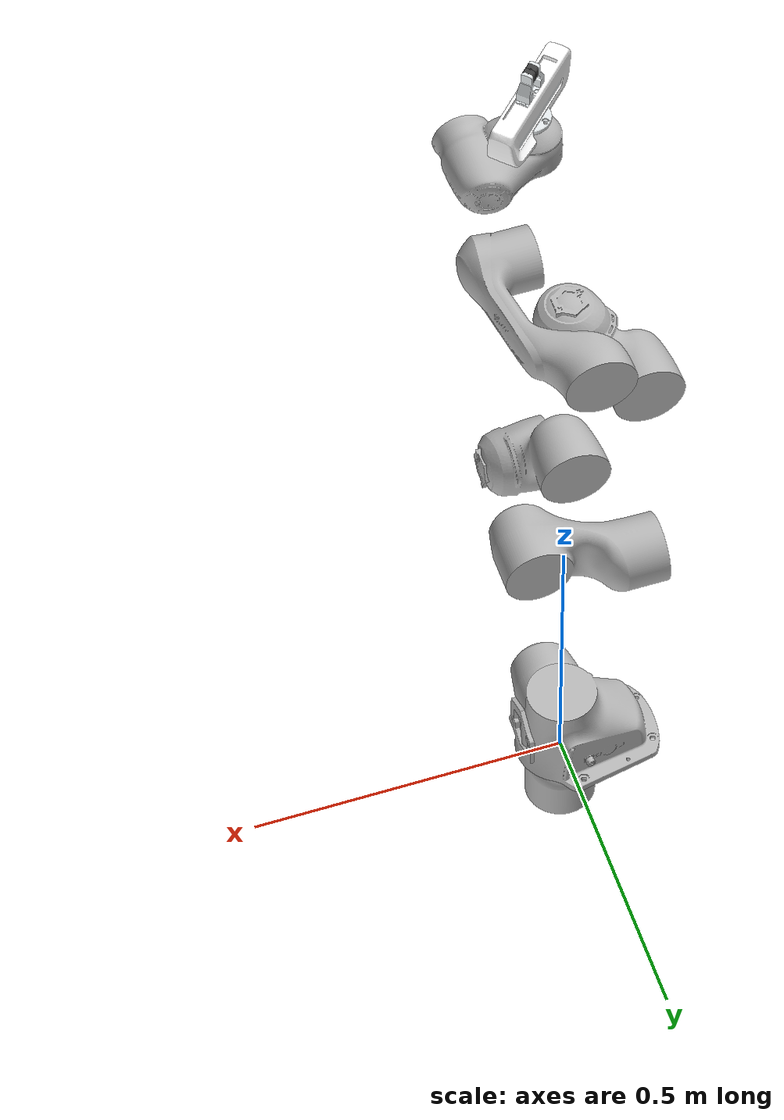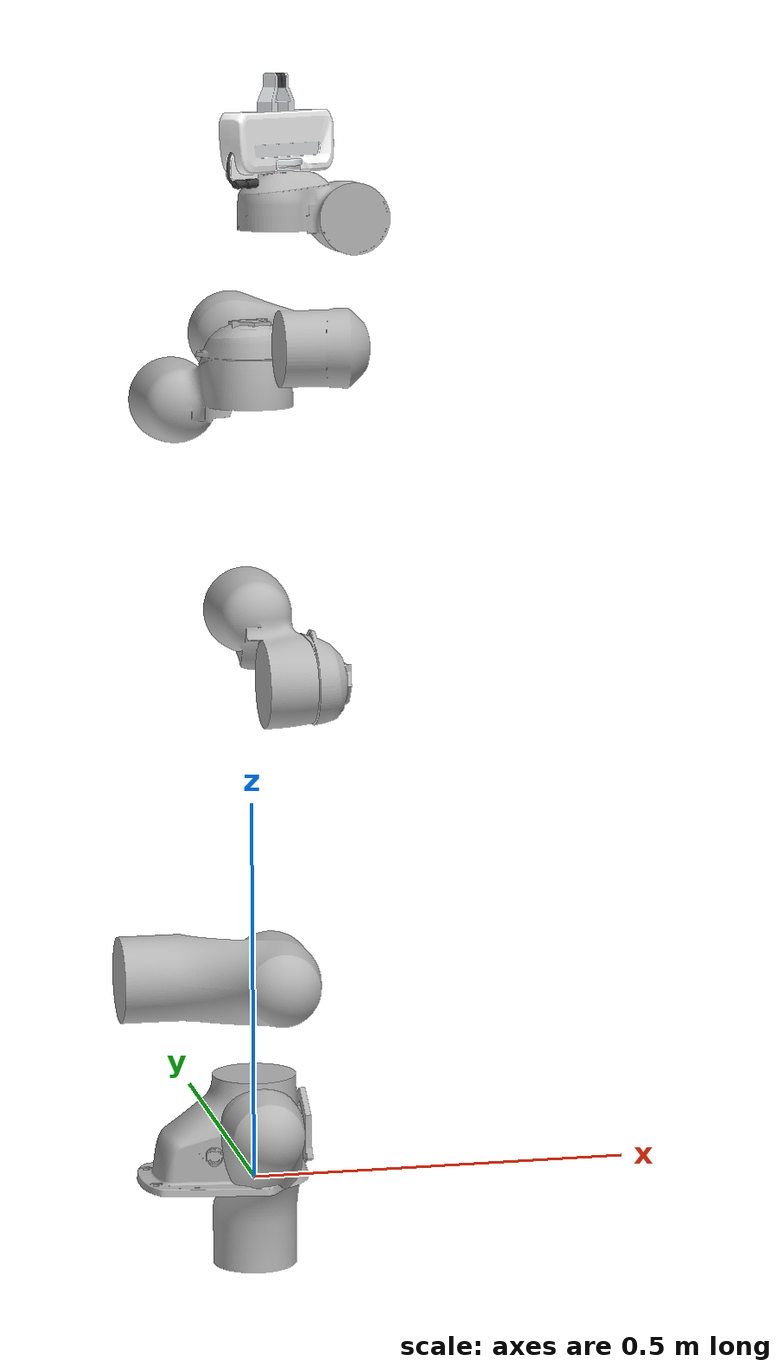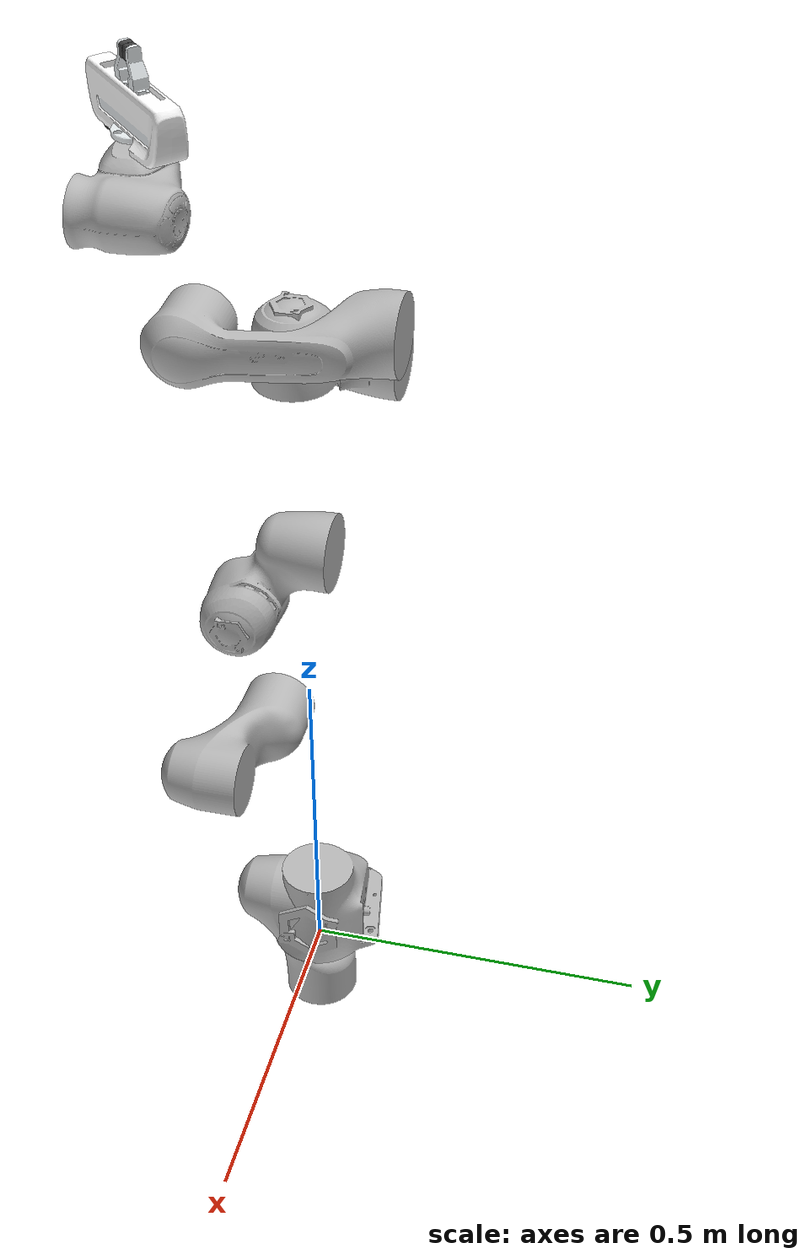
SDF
<?xml version="1.0" ?>
<sdf version="1.7">
    <model name="indy7whand">
        <!-- Fix To World -->
        <joint name="indy7_joint_world" type="fixed">
            <parent>world</parent>
            <child>indy7_link0</child>
        </joint>
        <!-- Arm Links -->
        <link name="indy7_link0">
            <visual name="indy7_link0_visual">
                <geometry>
                    <mesh>
                        <uri>https://fuel.ignitionrobotics.org/1.0/pmh5050/models/indy7/2/files/meshes/visual/link0.stl</uri>
                    </mesh>
                </geometry>
            </visual>
            <collision name="indy7_link0_collision">
                <geometry>
                    <mesh>
                        <uri>https://fuel.ignitionrobotics.org/1.0/pmh5050/models/indy7/2/files/meshes/visual/link0.stl</uri>
                    </mesh>
                </geometry>
                <surface>
                    <friction>
                        <ode>
                            <mu>1.05</mu>
                            <mu2>1.05</mu2>
                        </ode>
                    </friction>
                </surface>
            </collision>
            <inertial>
                <inertia>
                    <ixx>0.005539632623033441</ixx>
                    <iyy>0.005801945157215893</iyy>
                    <izz>0.010586386650296754</izz>
                    <ixy>-1.2227647336197177e-06</ixy>
                    <ixz>5.273278732323956e-05</ixz>
                    <iyz>2.0169648647550674e-07</iyz>
                </inertia>
                <pose>-0.00058911 1.65353e-06 0.0369576 0 0 0</pose>
                <mass>2.1311894186529186</mass>
            </inertial>
        </link>
        <link name="indy7_link1">
            <pose relative_to="indy7_joint1">0 0 0 0 0 0</pose>
            <visual name="indy7_link1_visual">
                <geometry>
                    <mesh>
                        <uri>https://fuel.ignitionrobotics.org/1.0/pmh5050/models/indy7/2/files/meshes/visual/link1.stl</uri>
                    </mesh>
                </geometry>
            </visual>
            <collision name="indy7_link1_collision">
                <geometry>
                    <mesh>
                        <uri>https://fuel.ignitionrobotics.org/1.0/pmh5050/models/indy7/2/files/meshes/visual/link1.stl</uri>
                    </mesh>
                </geometry>
                <surface>
                    <friction>
                        <ode>
                            <mu>1.05</mu>
                            <mu2>1.05</mu2>
                        </ode>
                    </friction>
                </surface>
            </collision>
            <inertial>
                <inertia>
                    <ixx>0.0148524244273536</ixx>
                    <iyy>0.014106931226049557</iyy>
                    <izz>0.008162736605552327</izz>
                    <ixy>1.0100553890581127e-06</ixy>
                    <ixz>2.7561848751209972e-06</ixz>
                    <iyz>0.0033340092775459226</iyz>
                </inertia>
                <pose>8.14364e-06 -0.0342345 0.160472 0 0 0</pose>
                <mass>1.551931236405957</mass>
            </inertial>
        </link>
        <link name="indy7_link2">
            <pose relative_to="indy7_joint2">0 0 0 0 0 0</pose>
            <visual name="indy7_link2_visual">
                <geometry>
                    <mesh>
                        <uri>https://fuel.ignitionrobotics.org/1.0/pmh5050/models/indy7/2/files/meshes/visual/link2.stl</uri>
                    </mesh>
                </geometry>
            </visual>
            <collision name="indy7_link2_collision">
                <geometry>
                    <mesh>
                        <uri>https://fuel.ignitionrobotics.org/1.0/pmh5050/models/indy7/2/files/meshes/visual/link2.stl</uri>
                    </mesh>
                </geometry>
                <surface>
                    <friction>
                        <ode>
                            <mu>1.05</mu>
                            <mu2>1.05</mu2>
                        </ode>
                    </friction>
                </surface>
            </collision>
            <inertial>
                <inertia>
                    <ixx>0.031940497190853935</ixx>
                    <iyy>0.25763478226066805</iyy>
                    <izz>0.23709709816883917</izz>
                    <ixy>4.045423338707414e-06</ixy>
                    <ixz>-0.010682473828245958</ixz>
                    <iyz>2.8674601059559716e-06</iyz>
                </inertia>
                <pose>-0.20838 -6.40588e-06 0.0466178 0 0 0</pose>
                <mass>11.728264581913129</mass>
            </inertial>
        </link>
        <link name="indy7_link3">
            <pose relative_to="indy7_joint3">0 0 0 0 0 0</pose>
            <visual name="indy7_link3_visual">
                <geometry>
                    <mesh>
                        <uri>https://fuel.ignitionrobotics.org/1.0/pmh5050/models/indy7/2/files/meshes/visual/link3.stl</uri>
                    </mesh>
                </geometry>
            </visual>
            <collision name="indy7_link3_collision">
                <geometry>
                    <mesh>
                        <uri>https://fuel.ignitionrobotics.org/1.0/pmh5050/models/indy7/2/files/meshes/visual/link3.stl</uri>
                    </mesh>
                </geometry>
                <surface>
                    <friction>
                        <ode>
                            <mu>1.05</mu>
                            <mu2>1.05</mu2>
                        </ode>
                    </friction>
                </surface>
            </collision>
            <inertial>
                <inertia>
                    <ixx>0.0035236079378671153</ixx>
                    <iyy>0.012367043193457132</iyy>
                    <izz>0.01087480800833959</izz>
                    <ixy>1.0176445869907627e-07</ixy>
                    <ixz>-0.001423302013928762</ixz>
                    <iyz>-1.6188026601592563e-07</iyz>
                </inertia>
                <pose>-0.0966333 -3.62965e-07 -0.0496837 0 0 0</pose>
                <mass>1.1987293471615488</mass>
            </inertial>
        </link>
        <link name="indy7_link4">
            <pose relative_to="indy7_joint4">0 0 0 0 0 0</pose>
            <visual name="indy7_link4_visual">
                <geometry>
                    <mesh>
                        <uri>https://fuel.ignitionrobotics.org/1.0/pmh5050/models/indy7/2/files/meshes/visual/link4.stl</uri>
                    </mesh>
                </geometry>
            </visual>
            <collision name="indy7_link4_collision">
                <geometry>
                    <mesh>
                        <uri>https://fuel.ignitionrobotics.org/1.0/pmh5050/models/indy7/2/files/meshes/visual/link4.stl</uri>
                    </mesh>
                </geometry>
                <surface>
                    <friction>
                        <ode>
                            <mu>1.05</mu>
                            <mu2>1.05</mu2>
                        </ode>
                    </friction>
                </surface>
            </collision>
            <inertial>
                <inertia>
                    <ixx>0.0017769209306738372</ixx>
                    <iyy>0.0037098366268569676</iyy>
                    <izz>0.0030422952521189763</izz>
                    <ixy>7.03700617155862e-08</ixy>
                    <ixz>0.0006362846715912113</ixz>
                    <iyz>-1.8710442295513876e-07</iyz>
                </inertia>
                <pose>-4.44459e-06 -0.0502282 0.18835 0 0 0</pose>
                <mass>0.31275085029884664</mass>
            </inertial>
        </link>
        <link name="indy7_link5">
            <pose relative_to="indy7_joint5">0 0 0 0 0 0</pose>
            <visual name="indy7_link5_visual">
                <geometry>
                    <mesh>
                        <uri>https://fuel.ignitionrobotics.org/1.0/pmh5050/models/indy7/2/files/meshes/visual/link5.stl</uri>
                    </mesh>
                </geometry>
            </visual>
            <collision name="indy7_link5_collision">
                <geometry>
                    <mesh>
                        <uri>https://fuel.ignitionrobotics.org/1.0/pmh5050/models/indy7/2/files/meshes/visual/link5.stl</uri>
                    </mesh>
                </geometry>
                <surface>
                    <friction>
                        <ode>
                            <mu>1.05</mu>
                            <mu2>1.05</mu2>
                        </ode>
                    </friction>
                </surface>
            </collision>
            <inertial>
                <inertia>
                    <ixx>0.0017769209306738372</ixx>
                    <iyy>0.0037098366268569676</iyy>
                    <izz>0.0030422952521189763</izz>
                    <ixy>7.03700617155862e-08</ixy>
                    <ixz>0.0006362846715912113</ixz>
                    <iyz>-1.8710442295513876e-07</iyz>
                </inertia>
                <pose>-0.0567136 3.76207e-06 0.0510429 0 0 0</pose>
                <mass>0.7172264920432064</mass>
            </inertial>
        </link>
        <link name="indy7_link6">
            <pose relative_to="indy7_joint6">0 0 0 0 0 0</pose>
            <visual name="indy7_link6_visual">
                <geometry>
                    <mesh>
                        <uri>https://fuel.ignitionrobotics.org/1.0/pmh5050/models/indy7/2/files/meshes/visual/link6.stl</uri>
                    </mesh>
                </geometry>
            </visual>
            <collision name="indy7_link6_collision">
                <geometry>
                    <mesh>
                        <uri>https://fuel.ignitionrobotics.org/1.0/pmh5050/models/indy7/2/files/meshes/visual/link6.stl</uri>
                    </mesh>
                </geometry>
                <surface>
                    <friction>
                        <ode>
                            <mu>1.05</mu>
                            <mu2>1.05</mu2>
                        </ode>
                    </friction>
                </surface>
            </collision>
            <inertial>
                <inertia>
                    <ixx>0.0005001352247028735</ixx>
                    <iyy>0.000479311255399018</iyy>
                    <izz>0.0005404413378868871</izz>
                    <ixy>1.5389980474027265e-06</ixy>
                    <ixz>-1.553434705065274e-07</ixz>
                    <iyz>-1.7117660165374934e-05</iyz>
                </inertia>
                <pose>-0.000321227 0.00234386 0.0105175 0 0 0</pose>
                <mass>0.3599080735243878</mass>
            </inertial>
        </link>
        <!-- Arm Joints -->
        <joint name="indy7_joint1" type="revolute">
            <pose relative_to="indy7_link0">0 0 0.0775 0 0 0</pose>
            <parent>indy7_link0</parent>
            <child>indy7_link1</child>
            <axis>
                <xyz>0 0 1</xyz>
                <limit>
                    <effort>87</effort>
                    <lower>-3.05</lower>
                    <upper>3.05</upper>
                    <velocity>2.617993877991494</velocity>
                </limit>
                <dynamics>
                    <spring_reference>0</spring_reference>
                    <spring_stiffness>0</spring_stiffness>
                    <damping>21.75</damping>
                    <friction>3.48</friction>
                </dynamics>
            </axis>
        </joint>
        <joint name="indy7_joint2" type="revolute">
            <pose relative_to="indy7_link1">0 -0.10900000 0.22200000 1.57 1.57 0</pose>
            <parent>indy7_link1</parent>
            <child>indy7_link2</child>
            <axis>
                <xyz>0 0 1</xyz>
                <limit>
                    <effort>87</effort>
                    <lower>-3.05</lower>
                    <upper>3.05</upper>
                    <velocity>2.617993877991494</velocity>
                </limit>
                <dynamics>
                    <spring_reference>0</spring_reference>
                    <spring_stiffness>0</spring_stiffness>
                    <damping>21.75</damping>
                    <friction>3.48</friction>
                </dynamics>
            </axis>
        </joint>
        <joint name="indy7_joint3" type="revolute">
            <pose relative_to="indy7_link2">-0.45000000 +0.00000000 -0.03050000 0 0 0</pose>
            <parent>indy7_link2</parent>
            <child>indy7_link3</child>
            <axis>
                <xyz>0 0 1</xyz>
                <limit>
                    <effort>87</effort>
                    <lower>-3.05</lower>
                    <upper>3.05</upper>
                    <velocity>2.617993877991494</velocity>
                </limit>
                <dynamics>
                    <spring_reference>0</spring_reference>
                    <spring_stiffness>0</spring_stiffness>
                    <damping>21.75</damping>
                    <friction>3.48</friction>
                </dynamics>
            </axis>
        </joint>
        <joint name="indy7_joint4" type="revolute">
            <pose relative_to="indy7_link3">-0.26700000 +0.00000000 -0.07500000 -1.57 0 1.57</pose>
            <parent>indy7_link3</parent>
            <child>indy7_link4</child>
            <axis>
                <xyz>0 0 1</xyz>
                <limit>
                    <effort>87</effort>
                    <lower>-3.05</lower>
                    <upper>3.05</upper>
                    <velocity>2.617993877991494</velocity>
                </limit>
                <dynamics>
                    <spring_reference>0</spring_reference>
                    <spring_stiffness>0</spring_stiffness>
                    <damping>21.75</damping>
                    <friction>3.48</friction>
                </dynamics>
            </axis>
        </joint>
        <joint name="indy7_joint5" type="revolute">
            <pose relative_to="indy7_link4">+0.00000000 -0.11400000 +0.08300000 1.57 1.57 0</pose>
            <parent>indy7_link4</parent>
            <child>indy7_link5</child>
            <axis>
                <xyz>0 0 1</xyz>
                <limit>
                    <effort>87</effort>
                    <lower>-3.05</lower>
                    <upper>3.05</upper>
                    <velocity>2.617993877991494</velocity>
                </limit>
                <dynamics>
                    <spring_reference>0</spring_reference>
                    <spring_stiffness>0</spring_stiffness>
                    <damping>21.75</damping>
                    <friction>3.48</friction>
                </dynamics>
            </axis>
        </joint>
        <joint name="indy7_joint6" type="revolute">
            <pose relative_to="indy7_link5">-0.16800000 +0.00000000 +0.06900000 -1.57 0 1.57</pose>
            <parent>indy7_link5</parent>
            <child>indy7_link6</child>
            <axis>
                <xyz>0 0 1</xyz>
                <limit>
                    <effort>87</effort>
                    <lower>-3.75</lower>
                    <upper>3.75</upper>
                    <velocity>2.617993877991494</velocity>
                </limit>
                <dynamics>
                    <spring_reference>0</spring_reference>
                    <spring_stiffness>0</spring_stiffness>
                    <damping>21.75</damping>
                    <friction>3.48</friction>
                </dynamics>
            </axis>
        </joint>
        <!-- Arm-Hand Fixed Joint -->
        <joint name="indy7_hand_joint" type="fixed">
            <pose relative_to="indy7_link6">0 0 0.064 0 0 -0.7853981633974483</pose>
            <parent>indy7_link6</parent>
            <child>indy7_hand</child>
        </joint>
        <!-- Hand Links -->
        <link name="indy7_hand">
            <pose relative_to="indy7_hand_joint">0 0 0 0 0 0</pose>
            <visual name="indy7_hand_visual">
                <pose>0 0 0 0 0 0</pose>
                <geometry>
                    <mesh>
                        <uri>https://fuel.ignitionrobotics.org/1.0/andrejorsula/models/panda/3/files/meshes/visual/hand.dae</uri>
                    </mesh>
                </geometry>
            </visual>
            <collision name="indy7_hand_collision">
                <pose>0 0 0 0 0 0</pose>
                <geometry>
                    <mesh>
                        <uri>https://fuel.ignitionrobotics.org/1.0/andrejorsula/models/panda/3/files/meshes/collision/hand.stl</uri>
                    </mesh>
                </geometry>
                <surface>
                    <friction>
                        <ode>
                            <mu>1.05</mu>
                            <mu2>1.05</mu2>
                        </ode>
                    </friction>
                </surface>
            </collision>
            <inertial>
                <pose>-6.7624e-06 0.00152435 0.0275912 0 0 0</pose>
                <mass>0.14060765127978503</mass>
                <inertia>
                    <ixx>0.0005365450414352072</ixx>
                    <iyy>7.70511954783727e-05</iyy>
                    <izz>0.0004938176882694914</izz>
                    <ixy>1.7911952957732454e-08</ixy>
                    <ixz>-2.320071910601251e-08</ixz>
                    <iyz>4.681149945315967e-08</iyz>
                </inertia>
            </inertial>
        </link>
        <link name="indy7_leftfinger">
            <pose relative_to="indy7_finger_joint1">0 0 0 0 0 0</pose>
            <visual name="indy7_leftfinger_visual">
                <geometry>
                    <mesh>
                        <uri>https://fuel.ignitionrobotics.org/1.0/andrejorsula/models/panda/3/files/meshes/visual/finger.dae</uri>
                    </mesh>
                </geometry>
            </visual>
            <collision name="indy7_leftfinger_collision">
                <geometry>
                    <mesh>
                        <uri>https://fuel.ignitionrobotics.org/1.0/andrejorsula/models/panda/3/files/meshes/collision/finger.stl</uri>
                    </mesh>
                </geometry>
                <surface>
                    <friction>
                        <ode>
                            <mu>2.15</mu>
                            <mu2>2.15</mu2>
                        </ode>
                    </friction>
                </surface>
            </collision>
            <inertial>
                <pose>-6.2561e-06 0.00227781 -0.0277116 0 0 0</pose>
                <mass>0.2238453537819424</mass>
                <inertia>
                    <ixx>6.74804167363695e-05</ixx>
                    <iyy>6.627189221641395e-05</iyy>
                    <izz>1.550396267804825e-05</izz>
                    <ixy>-4.1027443646025676e-09</ixy>
                    <ixz>1.8693673970152995e-08</ixz>
                    <iyz>1.1967548474390802e-05</iyz>
                </inertia>
            </inertial>
        </link>
        <link name="indy7_rightfinger">
            <pose relative_to="indy7_finger_joint2">0 0 0 0 0 0</pose>
            <visual name="indy7_rightfinger_visual">
                <pose>0 0 0 0 0 3.141592653589793</pose>
                <geometry>
                    <mesh>
                        <uri>https://fuel.ignitionrobotics.org/1.0/andrejorsula/models/panda/3/files/meshes/visual/finger.dae</uri>
                    </mesh>
                </geometry>
            </visual>
            <collision name="indy7_rightfinger_collision">
                <pose>0 0 0 0 0 3.141592653589793</pose>
                <geometry>
                    <mesh>
                        <uri>https://fuel.ignitionrobotics.org/1.0/andrejorsula/models/panda/3/files/meshes/collision/finger.stl</uri>
                    </mesh>
                </geometry>
                <surface>
                    <friction>
                        <ode>
                            <mu>2.15</mu>
                            <mu2>2.15</mu2>
                        </ode>
                    </friction>
                </surface>
            </collision>
            <inertial>
                <pose>-6.2561e-06 0.00227781 -0.0277116 0 0 3.141592653589793</pose>
                <mass>0.2238453537819424</mass>
                <inertia>
                    <ixx>6.74804167363695e-05</ixx>
                    <iyy>6.627189221641395e-05</iyy>
                    <izz>1.550396267804825e-05</izz>
                    <ixy>-4.1027443646025676e-09</ixy>
                    <ixz>1.8693673970152995e-08</ixz>
                    <iyz>1.1967548474390802e-05</iyz>
                </inertia>
            </inertial>
        </link>
        <!-- Finger Joints -->
        <joint name="indy7_finger_joint1" type="prismatic">
            <pose relative_to="indy7_hand">0 0 0.0584 0 0 0</pose>
            <parent>indy7_hand</parent>
            <child>indy7_leftfinger</child>
            <axis>
                <xyz>0 1 0</xyz>
                <limit>
                    <effort>20</effort>
                    <lower>0.0</lower>
                    <upper>0.04</upper>
                    <velocity>0.2</velocity>
                </limit>
                <dynamics>
                    <spring_reference>0</spring_reference>
                    <spring_stiffness>0</spring_stiffness>
                    <damping>10</damping>
                    <friction>0.5</friction>
                </dynamics>
            </axis>
        </joint>
        <joint name="indy7_finger_joint2" type="prismatic">
            <pose relative_to="indy7_hand">0 0 0.0584 0 0 0</pose>
            <parent>indy7_hand</parent>
            <child>indy7_rightfinger</child>
            <axis>
                <xyz>0 -1 0</xyz>
                <limit>
                    <effort>20</effort>
                    <lower>0.0</lower>
                    <upper>0.04</upper>
                    <velocity>0.2</velocity>
                </limit>
                <dynamics>
                    <spring_reference>0</spring_reference>
                    <spring_stiffness>0</spring_stiffness>
                    <damping>10</damping>
                    <friction>0.5</friction>
                </dynamics>
            </axis>
        </joint>
        <!-- End-effector -->
        <link name="indy7_link7">
            <pose relative_to="end_effector_frame_fixed_joint">0 0 0 0 0 0</pose>
        </link>
        <joint name="end_effector_frame_fixed_joint" type="fixed">
            <pose relative_to="indy7_hand">0 0 0.06 0 0 0</pose>
            <parent>indy7_hand</parent>
            <child>indy7_link7</child>
        </joint>
    </model>
</sdf>
